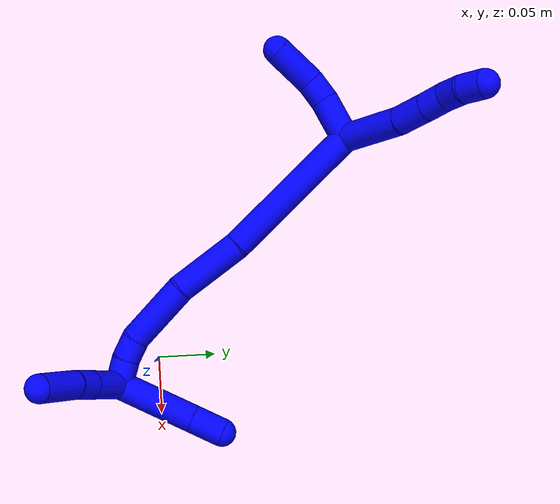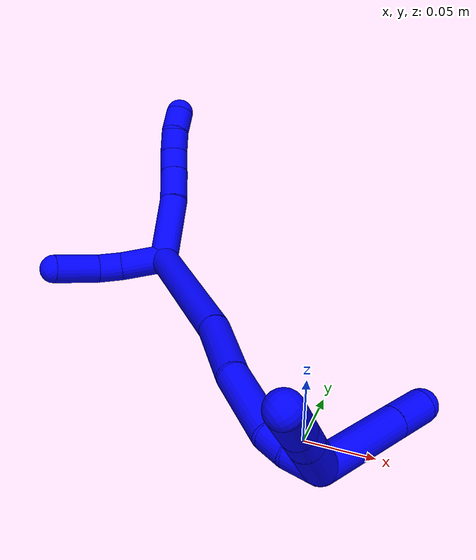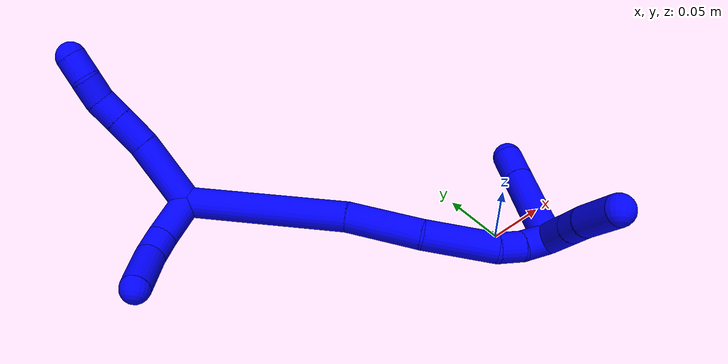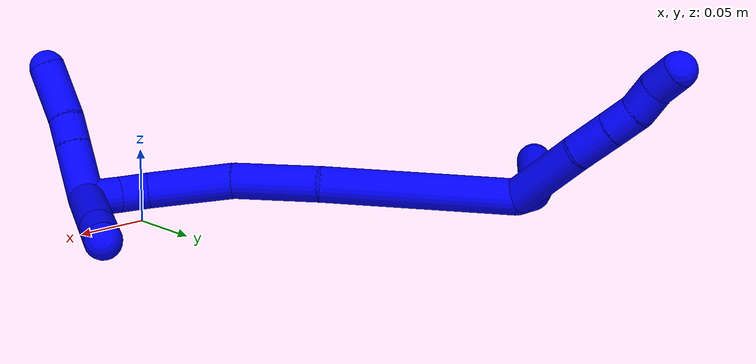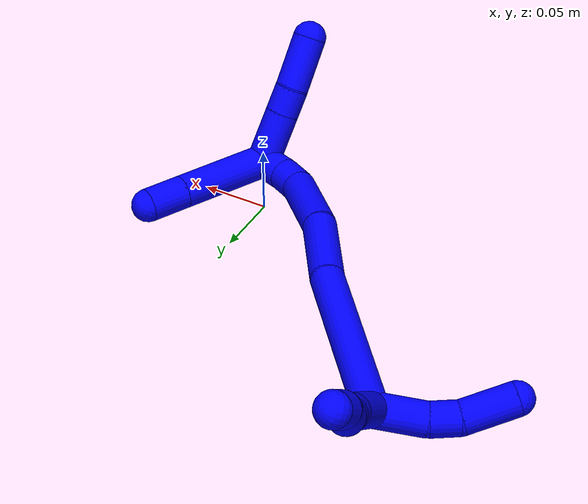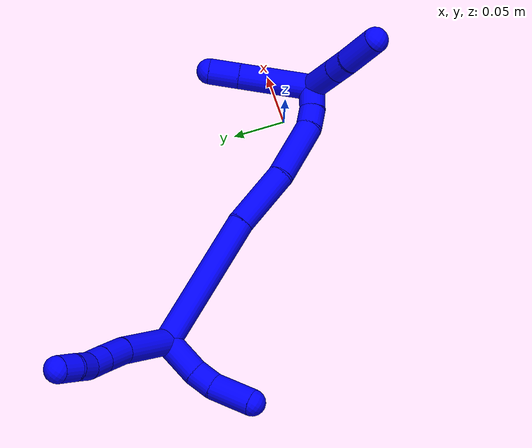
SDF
<sdf version="1.7">
 <world name="default">
  <model name="1">
   <static>0</static>
   <link name="1">
    <collision name="collision-cylinder-e_1_2_8">
     <pose>-0.020306 0.006701 0.0202 -0.320328 -0.761918 0.129228</pose>
     <geometry><cylinder><radius>0.0125</radius><length>0.058831</length></cylinder></geometry>
     <surface>
      <friction><ode><mu>1.16</mu><mu2>1.16</mu2><slip1>0</slip1><slip2>0</slip2></ode></friction>
      <contact><ode><kp>1e+06</kp><kd>1</kd><max_vel>0</max_vel><min_depth>0.001</min_depth></ode></contact>
     </surface>
    </collision>
    <visual name="visual-cylinder-e_1_2_8">
     <pose>-0.020306 0.006701 0.0202 -0.320328 -0.761918 0.129228</pose>
     <geometry><cylinder><radius>0.0125</radius><length>0.058831</length></cylinder></geometry>
     <material><ambient>0 0 1 1</ambient></material>
    </visual>
    <collision name="collision-cylinder-e_2_8_9">
     <pose>-0.05178 0.0171 0.048631 -0.422159 -0.891213 0.203982</pose>
     <geometry><cylinder><radius>0.0125</radius><length>0.028716</length></cylinder></geometry>
     <surface>
      <friction><ode><mu>1.16</mu><mu2>1.16</mu2><slip1>0</slip1><slip2>0</slip2></ode></friction>
      <contact><ode><kp>1e+06</kp><kd>1</kd><max_vel>0</max_vel><min_depth>0.001</min_depth></ode></contact>
     </surface>
    </collision>
    <visual name="visual-cylinder-e_2_8_9">
     <pose>-0.05178 0.0171 0.048631 -0.422159 -0.891213 0.203982</pose>
     <geometry><cylinder><radius>0.0125</radius><length>0.028716</length></cylinder></geometry>
     <material><ambient>0 0 1 1</ambient></material>
    </visual>
    <collision name="collision-cylinder-e_3_9_10">
     <pose>-0.071297 0.023446 0.062744 -0.423229 -0.912993 0.210226</pose>
     <geometry><cylinder><radius>0.0125</radius><length>0.021101</length></cylinder></geometry>
     <surface>
      <friction><ode><mu>1.16</mu><mu2>1.16</mu2><slip1>0</slip1><slip2>0</slip2></ode></friction>
      <contact><ode><kp>1e+06</kp><kd>1</kd><max_vel>0</max_vel><min_depth>0.001</min_depth></ode></contact>
     </surface>
    </collision>
    <visual name="visual-cylinder-e_3_9_10">
     <pose>-0.071297 0.023446 0.062744 -0.423229 -0.912993 0.210226</pose>
     <geometry><cylinder><radius>0.0125</radius><length>0.021101</length></cylinder></geometry>
     <material><ambient>0 0 1 1</ambient></material>
    </visual>
    <collision name="collision-cylinder-e_4_10_11">
     <pose>-0.087548 0.026059 0.075244 0.005544 -0.873499 -0.002588</pose>
     <geometry><cylinder><radius>0.0125</radius><length>0.020616</length></cylinder></geometry>
     <surface>
      <friction><ode><mu>1.16</mu><mu2>1.16</mu2><slip1>0</slip1><slip2>0</slip2></ode></friction>
      <contact><ode><kp>1e+06</kp><kd>1</kd><max_vel>0</max_vel><min_depth>0.001</min_depth></ode></contact>
     </surface>
    </collision>
    <visual name="visual-cylinder-e_4_10_11">
     <pose>-0.087548 0.026059 0.075244 0.005544 -0.873499 -0.002588</pose>
     <geometry><cylinder><radius>0.0125</radius><length>0.020616</length></cylinder></geometry>
     <material><ambient>0 0 1 1</ambient></material>
    </visual>
    <collision name="collision-cylinder-e_5_11_6">
     <pose>-0.102204 0.02814 0.089439 -0.272527 -0.709464 0.101486</pose>
     <geometry><cylinder><radius>0.0125</radius><length>0.020736</length></cylinder></geometry>
     <surface>
      <friction><ode><mu>1.16</mu><mu2>1.16</mu2><slip1>0</slip1><slip2>0</slip2></ode></friction>
      <contact><ode><kp>1e+06</kp><kd>1</kd><max_vel>0</max_vel><min_depth>0.001</min_depth></ode></contact>
     </surface>
    </collision>
    <visual name="visual-cylinder-e_5_11_6">
     <pose>-0.102204 0.02814 0.089439 -0.272527 -0.709464 0.101486</pose>
     <geometry><cylinder><radius>0.0125</radius><length>0.020736</length></cylinder></geometry>
     <material><ambient>0 0 1 1</ambient></material>
    </visual>
    <collision name="collision-cylinder-e_1_2_12">
     <pose>-0.008676 0.001172 -0.016958 -3.07259 -0.471949 2.85647</pose>
     <geometry><cylinder><radius>0.0125</radius><length>0.038169</length></cylinder></geometry>
     <surface>
      <friction><ode><mu>1.16</mu><mu2>1.16</mu2><slip1>0</slip1><slip2>0</slip2></ode></friction>
      <contact><ode><kp>1e+06</kp><kd>1</kd><max_vel>0</max_vel><min_depth>0.001</min_depth></ode></contact>
     </surface>
    </collision>
    <visual name="visual-cylinder-e_1_2_12">
     <pose>-0.008676 0.001172 -0.016958 -3.07259 -0.471949 2.85647</pose>
     <geometry><cylinder><radius>0.0125</radius><length>0.038169</length></cylinder></geometry>
     <material><ambient>0 0 1 1</ambient></material>
    </visual>
    <collision name="collision-cylinder-e_2_12_13">
     <pose>-0.022678 0.000621 -0.043222 2.95851 -0.512502 -2.4676</pose>
     <geometry><cylinder><radius>0.0125</radius><length>0.02172</length></cylinder></geometry>
     <surface>
      <friction><ode><mu>1.16</mu><mu2>1.16</mu2><slip1>0</slip1><slip2>0</slip2></ode></friction>
      <contact><ode><kp>1e+06</kp><kd>1</kd><max_vel>0</max_vel><min_depth>0.001</min_depth></ode></contact>
     </surface>
    </collision>
    <visual name="visual-cylinder-e_2_12_13">
     <pose>-0.022678 0.000621 -0.043222 2.95851 -0.512502 -2.4676</pose>
     <geometry><cylinder><radius>0.0125</radius><length>0.02172</length></cylinder></geometry>
     <material><ambient>0 0 1 1</ambient></material>
    </visual>
    <collision name="collision-cylinder-e_3_13_5">
     <pose>-0.03786 -0.009482 -0.067854 2.64124 -0.513782 -1.59844</pose>
     <geometry><cylinder><radius>0.0125</radius><length>0.040111</length></cylinder></geometry>
     <surface>
      <friction><ode><mu>1.16</mu><mu2>1.16</mu2><slip1>0</slip1><slip2>0</slip2></ode></friction>
      <contact><ode><kp>1e+06</kp><kd>1</kd><max_vel>0</max_vel><min_depth>0.001</min_depth></ode></contact>
     </surface>
    </collision>
    <visual name="visual-cylinder-e_3_13_5">
     <pose>-0.03786 -0.009482 -0.067854 2.64124 -0.513782 -1.59844</pose>
     <geometry><cylinder><radius>0.0125</radius><length>0.040111</length></cylinder></geometry>
     <material><ambient>0 0 1 1</ambient></material>
    </visual>
    <collision name="collision-cylinder-e_1_2_14">
     <pose>0.041645 -0.052273 -0.003007 1.62826 0.671909 0.708508</pose>
     <geometry><cylinder><radius>0.0125</radius><length>0.133802</length></cylinder></geometry>
     <surface>
      <friction><ode><mu>1.16</mu><mu2>1.16</mu2><slip1>0</slip1><slip2>0</slip2></ode></friction>
      <contact><ode><kp>1e+06</kp><kd>1</kd><max_vel>0</max_vel><min_depth>0.001</min_depth></ode></contact>
     </surface>
    </collision>
    <visual name="visual-cylinder-e_1_2_14">
     <pose>0.041645 -0.052273 -0.003007 1.62826 0.671909 0.708508</pose>
     <geometry><cylinder><radius>0.0125</radius><length>0.133802</length></cylinder></geometry>
     <material><ambient>0 0 1 1</ambient></material>
    </visual>
    <collision name="collision-cylinder-e_2_14_15">
     <pose>0.101935 -0.128512 -0.011799 1.80764 0.647483 0.805731</pose>
     <geometry><cylinder><radius>0.0125</radius><length>0.061824</length></cylinder></geometry>
     <surface>
      <friction><ode><mu>1.16</mu><mu2>1.16</mu2><slip1>0</slip1><slip2>0</slip2></ode></friction>
      <contact><ode><kp>1e+06</kp><kd>1</kd><max_vel>0</max_vel><min_depth>0.001</min_depth></ode></contact>
     </surface>
    </collision>
    <visual name="visual-cylinder-e_2_14_15">
     <pose>0.101935 -0.128512 -0.011799 1.80764 0.647483 0.805731</pose>
     <geometry><cylinder><radius>0.0125</radius><length>0.061824</length></cylinder></geometry>
     <material><ambient>0 0 1 1</ambient></material>
    </visual>
    <collision name="collision-cylinder-e_3_15_16">
     <pose>0.143031 -0.172328 -0.020119 1.69781 0.842831 0.941895</pose>
     <geometry><cylinder><radius>0.0125</radius><length>0.060147</length></cylinder></geometry>
     <surface>
      <friction><ode><mu>1.16</mu><mu2>1.16</mu2><slip1>0</slip1><slip2>0</slip2></ode></friction>
      <contact><ode><kp>1e+06</kp><kd>1</kd><max_vel>0</max_vel><min_depth>0.001</min_depth></ode></contact>
     </surface>
    </collision>
    <visual name="visual-cylinder-e_3_15_16">
     <pose>0.143031 -0.172328 -0.020119 1.69781 0.842831 0.941895</pose>
     <geometry><cylinder><radius>0.0125</radius><length>0.060147</length></cylinder></geometry>
     <material><ambient>0 0 1 1</ambient></material>
    </visual>
    <collision name="collision-cylinder-e_4_16_17">
     <pose>0.173679 -0.198088 -0.02068 1.24862 0.920716 0.686255</pose>
     <geometry><cylinder><radius>0.0125</radius><length>0.020596</length></cylinder></geometry>
     <surface>
      <friction><ode><mu>1.16</mu><mu2>1.16</mu2><slip1>0</slip1><slip2>0</slip2></ode></friction>
      <contact><ode><kp>1e+06</kp><kd>1</kd><max_vel>0</max_vel><min_depth>0.001</min_depth></ode></contact>
     </surface>
    </collision>
    <visual name="visual-cylinder-e_4_16_17">
     <pose>0.173679 -0.198088 -0.02068 1.24862 0.920716 0.686255</pose>
     <geometry><cylinder><radius>0.0125</radius><length>0.020596</length></cylinder></geometry>
     <material><ambient>0 0 1 1</ambient></material>
    </visual>
    <collision name="collision-cylinder-e_5_17_1">
     <pose>0.190928 -0.210057 -0.014123 0.922966 0.87259 0.455689</pose>
     <geometry><cylinder><radius>0.0125</radius><length>0.023631</length></cylinder></geometry>
     <surface>
      <friction><ode><mu>1.16</mu><mu2>1.16</mu2><slip1>0</slip1><slip2>0</slip2></ode></friction>
      <contact><ode><kp>1e+06</kp><kd>1</kd><max_vel>0</max_vel><min_depth>0.001</min_depth></ode></contact>
     </surface>
    </collision>
    <visual name="visual-cylinder-e_5_17_1">
     <pose>0.190928 -0.210057 -0.014123 0.922966 0.87259 0.455689</pose>
     <geometry><cylinder><radius>0.0125</radius><length>0.023631</length></cylinder></geometry>
     <material><ambient>0 0 1 1</ambient></material>
    </visual>
    <collision name="collision-cylinder-e_1_1_18">
     <pose>0.189873 -0.233111 -0.009673 1.57866 -0.536366 -0.540396</pose>
     <geometry><cylinder><radius>0.0125</radius><length>0.039548</length></cylinder></geometry>
     <surface>
      <friction><ode><mu>1.16</mu><mu2>1.16</mu2><slip1>0</slip1><slip2>0</slip2></ode></friction>
      <contact><ode><kp>1e+06</kp><kd>1</kd><max_vel>0</max_vel><min_depth>0.001</min_depth></ode></contact>
     </surface>
    </collision>
    <visual name="visual-cylinder-e_1_1_18">
     <pose>0.189873 -0.233111 -0.009673 1.57866 -0.536366 -0.540396</pose>
     <geometry><cylinder><radius>0.0125</radius><length>0.039548</length></cylinder></geometry>
     <material><ambient>0 0 1 1</ambient></material>
    </visual>
    <collision name="collision-cylinder-e_2_18_19">
     <pose>0.174579 -0.258836 -0.009877 1.57884 -0.536327 -0.540453</pose>
     <geometry><cylinder><radius>0.0125</radius><length>0.020311</length></cylinder></geometry>
     <surface>
      <friction><ode><mu>1.16</mu><mu2>1.16</mu2><slip1>0</slip1><slip2>0</slip2></ode></friction>
      <contact><ode><kp>1e+06</kp><kd>1</kd><max_vel>0</max_vel><min_depth>0.001</min_depth></ode></contact>
     </surface>
    </collision>
    <visual name="visual-cylinder-e_2_18_19">
     <pose>0.174579 -0.258836 -0.009877 1.57884 -0.536327 -0.540453</pose>
     <geometry><cylinder><radius>0.0125</radius><length>0.020311</length></cylinder></geometry>
     <material><ambient>0 0 1 1</ambient></material>
    </visual>
    <collision name="collision-cylinder-e_3_19_4">
     <pose>0.161005 -0.285796 -0.010352 1.59301 -0.431008 -0.440385</pose>
     <geometry><cylinder><radius>0.0125</radius><length>0.040141</length></cylinder></geometry>
     <surface>
      <friction><ode><mu>1.16</mu><mu2>1.16</mu2><slip1>0</slip1><slip2>0</slip2></ode></friction>
      <contact><ode><kp>1e+06</kp><kd>1</kd><max_vel>0</max_vel><min_depth>0.001</min_depth></ode></contact>
     </surface>
    </collision>
    <visual name="visual-cylinder-e_3_19_4">
     <pose>0.161005 -0.285796 -0.010352 1.59301 -0.431008 -0.440385</pose>
     <geometry><cylinder><radius>0.0125</radius><length>0.040141</length></cylinder></geometry>
     <material><ambient>0 0 1 1</ambient></material>
    </visual>
    <collision name="collision-cylinder-e_1_1_20">
     <pose>0.205643 -0.197711 0.020054 -0.556328 0.161157 -0.046113</pose>
     <geometry><cylinder><radius>0.0125</radius><length>0.070612</length></cylinder></geometry>
     <surface>
      <friction><ode><mu>1.16</mu><mu2>1.16</mu2><slip1>0</slip1><slip2>0</slip2></ode></friction>
      <contact><ode><kp>1e+06</kp><kd>1</kd><max_vel>0</max_vel><min_depth>0.001</min_depth></ode></contact>
     </surface>
    </collision>
    <visual name="visual-cylinder-e_1_1_20">
     <pose>0.205643 -0.197711 0.020054 -0.556328 0.161157 -0.046113</pose>
     <geometry><cylinder><radius>0.0125</radius><length>0.070612</length></cylinder></geometry>
     <material><ambient>0 0 1 1</ambient></material>
    </visual>
    <collision name="collision-cylinder-e_2_20_3">
     <pose>0.213717 -0.171642 0.061949 -0.5573 0.164615 -0.047193</pose>
     <geometry><cylinder><radius>0.0125</radius><length>0.029388</length></cylinder></geometry>
     <surface>
      <friction><ode><mu>1.16</mu><mu2>1.16</mu2><slip1>0</slip1><slip2>0</slip2></ode></friction>
      <contact><ode><kp>1e+06</kp><kd>1</kd><max_vel>0</max_vel><min_depth>0.001</min_depth></ode></contact>
     </surface>
    </collision>
    <visual name="visual-cylinder-e_2_20_3">
     <pose>0.213717 -0.171642 0.061949 -0.5573 0.164615 -0.047193</pose>
     <geometry><cylinder><radius>0.0125</radius><length>0.029388</length></cylinder></geometry>
     <material><ambient>0 0 1 1</ambient></material>
    </visual>
    <collision name="collision-sphere-3">
     <pose>0.216125 -0.163976 0.074251 0 -0 0</pose>
     <geometry><sphere><radius>0.0125</radius></sphere></geometry>
     <surface>
      <friction><ode><mu>1.16</mu><mu2>1.16</mu2><slip1>0</slip1><slip2>0</slip2></ode></friction>
      <contact><ode><kp>1e+06</kp><kd>1</kd><max_vel>0</max_vel><min_depth>0.001</min_depth></ode></contact>
     </surface>
    </collision>
    <visual name="visual-sphere-3">
     <pose>0.216125 -0.163976 0.074251 0 -0 0</pose>
     <geometry><sphere><radius>0.0125</radius></sphere></geometry>
     <material><ambient>0 0 1 1</ambient></material>
    </visual>
    <collision name="collision-sphere-20">
     <pose>0.211309 -0.179309 0.049647 0 -0 0</pose>
     <geometry><sphere><radius>0.0125</radius></sphere></geometry>
     <surface>
      <friction><ode><mu>1.16</mu><mu2>1.16</mu2><slip1>0</slip1><slip2>0</slip2></ode></friction>
      <contact><ode><kp>1e+06</kp><kd>1</kd><max_vel>0</max_vel><min_depth>0.001</min_depth></ode></contact>
     </surface>
    </collision>
    <visual name="visual-sphere-20">
     <pose>0.211309 -0.179309 0.049647 0 -0 0</pose>
     <geometry><sphere><radius>0.0125</radius></sphere></geometry>
     <material><ambient>0 0 1 1</ambient></material>
    </visual>
    <collision name="collision-sphere-4">
     <pose>0.15262 -0.304027 -0.010757 0 -0 0</pose>
     <geometry><sphere><radius>0.0125</radius></sphere></geometry>
     <surface>
      <friction><ode><mu>1.16</mu><mu2>1.16</mu2><slip1>0</slip1><slip2>0</slip2></ode></friction>
      <contact><ode><kp>1e+06</kp><kd>1</kd><max_vel>0</max_vel><min_depth>0.001</min_depth></ode></contact>
     </surface>
    </collision>
    <visual name="visual-sphere-4">
     <pose>0.15262 -0.304027 -0.010757 0 -0 0</pose>
     <geometry><sphere><radius>0.0125</radius></sphere></geometry>
     <material><ambient>0 0 1 1</ambient></material>
    </visual>
    <collision name="collision-sphere-6">
     <pose>-0.108958 0.030257 0.097015 0 -0 0</pose>
     <geometry><sphere><radius>0.0125</radius></sphere></geometry>
     <surface>
      <friction><ode><mu>1.16</mu><mu2>1.16</mu2><slip1>0</slip1><slip2>0</slip2></ode></friction>
      <contact><ode><kp>1e+06</kp><kd>1</kd><max_vel>0</max_vel><min_depth>0.001</min_depth></ode></contact>
     </surface>
    </collision>
    <visual name="visual-sphere-6">
     <pose>-0.108958 0.030257 0.097015 0 -0 0</pose>
     <geometry><sphere><radius>0.0125</radius></sphere></geometry>
     <material><ambient>0 0 1 1</ambient></material>
    </visual>
    <collision name="collision-sphere-11">
     <pose>-0.09545 0.026022 0.081863 0 -0 0</pose>
     <geometry><sphere><radius>0.0125</radius></sphere></geometry>
     <surface>
      <friction><ode><mu>1.16</mu><mu2>1.16</mu2><slip1>0</slip1><slip2>0</slip2></ode></friction>
      <contact><ode><kp>1e+06</kp><kd>1</kd><max_vel>0</max_vel><min_depth>0.001</min_depth></ode></contact>
     </surface>
    </collision>
    <visual name="visual-sphere-11">
     <pose>-0.09545 0.026022 0.081863 0 -0 0</pose>
     <geometry><sphere><radius>0.0125</radius></sphere></geometry>
     <material><ambient>0 0 1 1</ambient></material>
    </visual>
    <collision name="collision-sphere-10">
     <pose>-0.079646 0.026096 0.068625 0 -0 0</pose>
     <geometry><sphere><radius>0.0125</radius></sphere></geometry>
     <surface>
      <friction><ode><mu>1.16</mu><mu2>1.16</mu2><slip1>0</slip1><slip2>0</slip2></ode></friction>
      <contact><ode><kp>1e+06</kp><kd>1</kd><max_vel>0</max_vel><min_depth>0.001</min_depth></ode></contact>
     </surface>
    </collision>
    <visual name="visual-sphere-10">
     <pose>-0.079646 0.026096 0.068625 0 -0 0</pose>
     <geometry><sphere><radius>0.0125</radius></sphere></geometry>
     <material><ambient>0 0 1 1</ambient></material>
    </visual>
    <collision name="collision-sphere-9">
     <pose>-0.062948 0.020797 0.056862 0 -0 0</pose>
     <geometry><sphere><radius>0.0125</radius></sphere></geometry>
     <surface>
      <friction><ode><mu>1.16</mu><mu2>1.16</mu2><slip1>0</slip1><slip2>0</slip2></ode></friction>
      <contact><ode><kp>1e+06</kp><kd>1</kd><max_vel>0</max_vel><min_depth>0.001</min_depth></ode></contact>
     </surface>
    </collision>
    <visual name="visual-sphere-9">
     <pose>-0.062948 0.020797 0.056862 0 -0 0</pose>
     <geometry><sphere><radius>0.0125</radius></sphere></geometry>
     <material><ambient>0 0 1 1</ambient></material>
    </visual>
    <collision name="collision-sphere-2">
     <geometry><sphere><radius>0.0125</radius></sphere></geometry>
     <surface>
      <friction><ode><mu>1.16</mu><mu2>1.16</mu2><slip1>0</slip1><slip2>0</slip2></ode></friction>
      <contact><ode><kp>1e+06</kp><kd>1</kd><max_vel>0</max_vel><min_depth>0.001</min_depth></ode></contact>
     </surface>
    </collision>
    <visual name="visual-sphere-2">
     <geometry><sphere><radius>0.0125</radius></sphere></geometry>
     <material><ambient>0 0 1 1</ambient></material>
    </visual>
    <collision name="collision-sphere-19">
     <pose>0.16939 -0.267566 -0.009947 0 -0 0</pose>
     <geometry><sphere><radius>0.0125</radius></sphere></geometry>
     <surface>
      <friction><ode><mu>1.16</mu><mu2>1.16</mu2><slip1>0</slip1><slip2>0</slip2></ode></friction>
      <contact><ode><kp>1e+06</kp><kd>1</kd><max_vel>0</max_vel><min_depth>0.001</min_depth></ode></contact>
     </surface>
    </collision>
    <visual name="visual-sphere-19">
     <pose>0.16939 -0.267566 -0.009947 0 -0 0</pose>
     <geometry><sphere><radius>0.0125</radius></sphere></geometry>
     <material><ambient>0 0 1 1</ambient></material>
    </visual>
    <collision name="collision-sphere-8">
     <pose>-0.040612 0.013403 0.0404 0 -0 0</pose>
     <geometry><sphere><radius>0.0125</radius></sphere></geometry>
     <surface>
      <friction><ode><mu>1.16</mu><mu2>1.16</mu2><slip1>0</slip1><slip2>0</slip2></ode></friction>
      <contact><ode><kp>1e+06</kp><kd>1</kd><max_vel>0</max_vel><min_depth>0.001</min_depth></ode></contact>
     </surface>
    </collision>
    <visual name="visual-sphere-8">
     <pose>-0.040612 0.013403 0.0404 0 -0 0</pose>
     <geometry><sphere><radius>0.0125</radius></sphere></geometry>
     <material><ambient>0 0 1 1</ambient></material>
    </visual>
    <collision name="collision-sphere-12">
     <pose>-0.017353 0.002344 -0.033916 0 -0 0</pose>
     <geometry><sphere><radius>0.0125</radius></sphere></geometry>
     <surface>
      <friction><ode><mu>1.16</mu><mu2>1.16</mu2><slip1>0</slip1><slip2>0</slip2></ode></friction>
      <contact><ode><kp>1e+06</kp><kd>1</kd><max_vel>0</max_vel><min_depth>0.001</min_depth></ode></contact>
     </surface>
    </collision>
    <visual name="visual-sphere-12">
     <pose>-0.017353 0.002344 -0.033916 0 -0 0</pose>
     <geometry><sphere><radius>0.0125</radius></sphere></geometry>
     <material><ambient>0 0 1 1</ambient></material>
    </visual>
    <collision name="collision-sphere-13">
     <pose>-0.028003 -0.001102 -0.052529 0 -0 0</pose>
     <geometry><sphere><radius>0.0125</radius></sphere></geometry>
     <surface>
      <friction><ode><mu>1.16</mu><mu2>1.16</mu2><slip1>0</slip1><slip2>0</slip2></ode></friction>
      <contact><ode><kp>1e+06</kp><kd>1</kd><max_vel>0</max_vel><min_depth>0.001</min_depth></ode></contact>
     </surface>
    </collision>
    <visual name="visual-sphere-13">
     <pose>-0.028003 -0.001102 -0.052529 0 -0 0</pose>
     <geometry><sphere><radius>0.0125</radius></sphere></geometry>
     <material><ambient>0 0 1 1</ambient></material>
    </visual>
    <collision name="collision-sphere-5">
     <pose>-0.047717 -0.017861 -0.083179 0 -0 0</pose>
     <geometry><sphere><radius>0.0125</radius></sphere></geometry>
     <surface>
      <friction><ode><mu>1.16</mu><mu2>1.16</mu2><slip1>0</slip1><slip2>0</slip2></ode></friction>
      <contact><ode><kp>1e+06</kp><kd>1</kd><max_vel>0</max_vel><min_depth>0.001</min_depth></ode></contact>
     </surface>
    </collision>
    <visual name="visual-sphere-5">
     <pose>-0.047717 -0.017861 -0.083179 0 -0 0</pose>
     <geometry><sphere><radius>0.0125</radius></sphere></geometry>
     <material><ambient>0 0 1 1</ambient></material>
    </visual>
    <collision name="collision-sphere-14">
     <pose>0.083289 -0.104545 -0.006014 0 -0 0</pose>
     <geometry><sphere><radius>0.0125</radius></sphere></geometry>
     <surface>
      <friction><ode><mu>1.16</mu><mu2>1.16</mu2><slip1>0</slip1><slip2>0</slip2></ode></friction>
      <contact><ode><kp>1e+06</kp><kd>1</kd><max_vel>0</max_vel><min_depth>0.001</min_depth></ode></contact>
     </surface>
    </collision>
    <visual name="visual-sphere-14">
     <pose>0.083289 -0.104545 -0.006014 0 -0 0</pose>
     <geometry><sphere><radius>0.0125</radius></sphere></geometry>
     <material><ambient>0 0 1 1</ambient></material>
    </visual>
    <collision name="collision-sphere-15">
     <pose>0.12058 -0.15248 -0.017584 0 -0 0</pose>
     <geometry><sphere><radius>0.0125</radius></sphere></geometry>
     <surface>
      <friction><ode><mu>1.16</mu><mu2>1.16</mu2><slip1>0</slip1><slip2>0</slip2></ode></friction>
      <contact><ode><kp>1e+06</kp><kd>1</kd><max_vel>0</max_vel><min_depth>0.001</min_depth></ode></contact>
     </surface>
    </collision>
    <visual name="visual-sphere-15">
     <pose>0.12058 -0.15248 -0.017584 0 -0 0</pose>
     <geometry><sphere><radius>0.0125</radius></sphere></geometry>
     <material><ambient>0 0 1 1</ambient></material>
    </visual>
    <collision name="collision-sphere-16">
     <pose>0.165482 -0.192176 -0.022654 0 -0 0</pose>
     <geometry><sphere><radius>0.0125</radius></sphere></geometry>
     <surface>
      <friction><ode><mu>1.16</mu><mu2>1.16</mu2><slip1>0</slip1><slip2>0</slip2></ode></friction>
      <contact><ode><kp>1e+06</kp><kd>1</kd><max_vel>0</max_vel><min_depth>0.001</min_depth></ode></contact>
     </surface>
    </collision>
    <visual name="visual-sphere-16">
     <pose>0.165482 -0.192176 -0.022654 0 -0 0</pose>
     <geometry><sphere><radius>0.0125</radius></sphere></geometry>
     <material><ambient>0 0 1 1</ambient></material>
    </visual>
    <collision name="collision-sphere-17">
     <pose>0.181877 -0.204001 -0.018707 0 -0 0</pose>
     <geometry><sphere><radius>0.0125</radius></sphere></geometry>
     <surface>
      <friction><ode><mu>1.16</mu><mu2>1.16</mu2><slip1>0</slip1><slip2>0</slip2></ode></friction>
      <contact><ode><kp>1e+06</kp><kd>1</kd><max_vel>0</max_vel><min_depth>0.001</min_depth></ode></contact>
     </surface>
    </collision>
    <visual name="visual-sphere-17">
     <pose>0.181877 -0.204001 -0.018707 0 -0 0</pose>
     <geometry><sphere><radius>0.0125</radius></sphere></geometry>
     <material><ambient>0 0 1 1</ambient></material>
    </visual>
    <collision name="collision-sphere-1">
     <pose>0.199978 -0.216114 -0.009539 0 -0 0</pose>
     <geometry><sphere><radius>0.0125</radius></sphere></geometry>
     <surface>
      <friction><ode><mu>1.16</mu><mu2>1.16</mu2><slip1>0</slip1><slip2>0</slip2></ode></friction>
      <contact><ode><kp>1e+06</kp><kd>1</kd><max_vel>0</max_vel><min_depth>0.001</min_depth></ode></contact>
     </surface>
    </collision>
    <visual name="visual-sphere-1">
     <pose>0.199978 -0.216114 -0.009539 0 -0 0</pose>
     <geometry><sphere><radius>0.0125</radius></sphere></geometry>
     <material><ambient>0 0 1 1</ambient></material>
    </visual>
    <collision name="collision-sphere-18">
     <pose>0.179769 -0.250107 -0.009807 0 -0 0</pose>
     <geometry><sphere><radius>0.0125</radius></sphere></geometry>
     <surface>
      <friction><ode><mu>1.16</mu><mu2>1.16</mu2><slip1>0</slip1><slip2>0</slip2></ode></friction>
      <contact><ode><kp>1e+06</kp><kd>1</kd><max_vel>0</max_vel><min_depth>0.001</min_depth></ode></contact>
     </surface>
    </collision>
    <visual name="visual-sphere-18">
     <pose>0.179769 -0.250107 -0.009807 0 -0 0</pose>
     <geometry><sphere><radius>0.0125</radius></sphere></geometry>
     <material><ambient>0 0 1 1</ambient></material>
    </visual>
    <inertial>
     <pose>0.075244 -0.10283 0.002858 0 -0 0</pose>
     <mass>0.75</mass>
     <inertia><ixx>0.000322</ixx><ixy>0</ixy><ixz>0</ixz><iyy>0.000261</iyy><iyz>0</iyz><izz>6e-05</izz></inertia>
    </inertial>
   </link>
   <pose>-0.184961 0.174907 0.018035 -0.888223 0.701619 -0.284534</pose>
  </model>
 </world>
</sdf>
